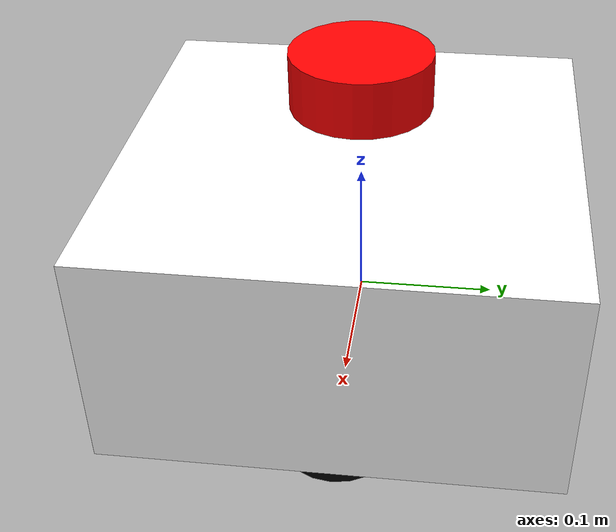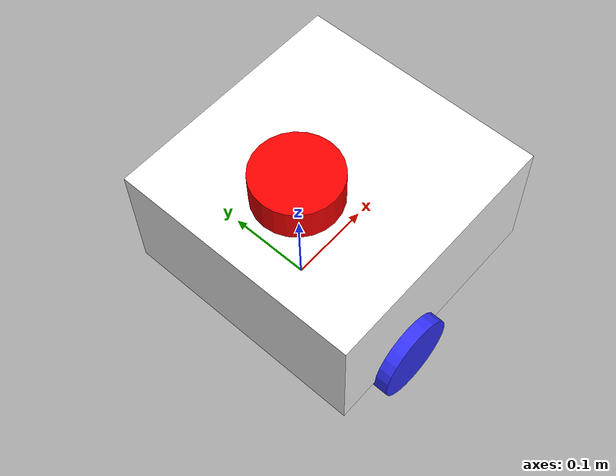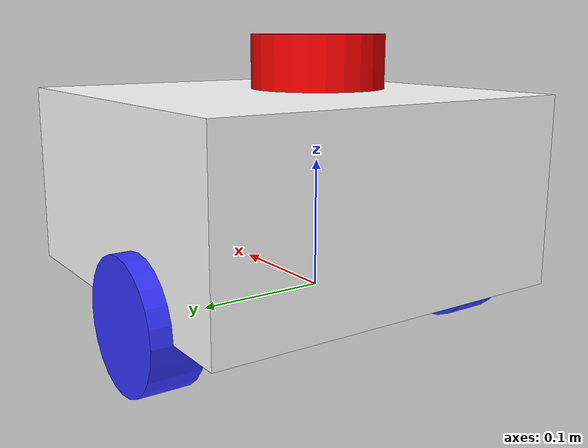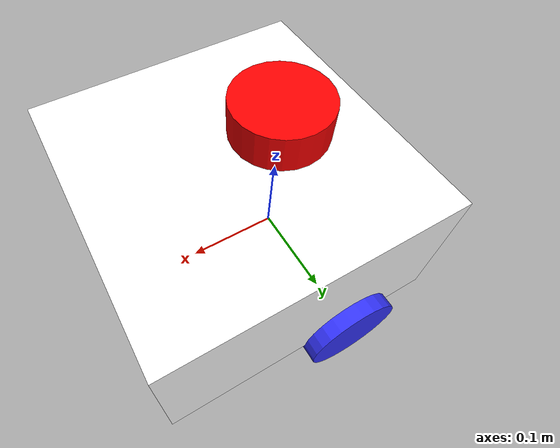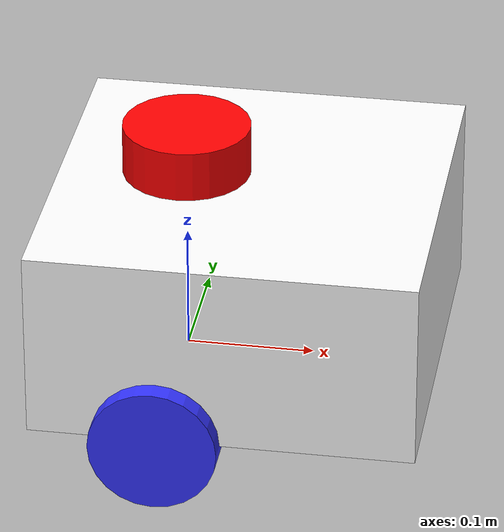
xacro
<?xml version="1.0"?>
<robot xmlns:xacro="http://www.ros.org/wiki/xacro"  name="robot">
    <xacro:arg name='use_ros2_control' default='true'/>
    <xacro:arg name='sim_mode' default='true'/>
    <xacro:include filename="robot_core.xacro" />
    <xacro:if value='$(arg use_ros2_control)'>
        <xacro:include filename="ros2_control.xacro"/>
    </xacro:if>
    <xacro:unless value='$(arg use_ros2_control)'>
        <xacro:include filename="gazebo_control.xacro" />
    </xacro:unless>
    <xacro:include filename="demo.lidar.xacro" />
</robot>

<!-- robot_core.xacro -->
<robot xmlns:xacro="http://www.ros.org/wiki/xacro">

    <xacro:include filename="inertial_macros.xacro" />

    <material name="white">
        <color rgba="1 1 1 1" />
    </material>

    <material name="orange">
        <color rgba="1 0.3 0.1 1" />
    </material>

    <material name="blue">
        <color rgba="0.2 0.2 1 1" />
    </material>

    <material name="black">
        <color rgba="0 0 0 1" />
    </material>

    <material name="red">
        <color rgba="1 0 0 1"/>
    </material>

    <!-- Base Link -->

    <link name="base_link">
        <origin xyz='0 0 0' rpy='0 0 0'/>
    </link>

    <!-- Base Footprint Link -->
     <joint name='base_footprint_joint' type='fixed'>
        <parent link='base_link'/>
        <child link='base_footprint'/>
        <origin xyz='0 0 0' rpy='0 0 0'/>

     </joint>

     <link name='base_footprint'>

     </link>

    <!-- Chassis -->

    <joint name="chassis_joint" type="fixed">
        <parent link="base_link" />
        <child link="chassis" />
        <origin xyz="-0.1 0 0" />
    </joint>

    <link name="chassis">
        <visual>
            <origin xyz="0.15 0 0.075" rpy="0 0 0" />
            <geometry>
                <box size="0.3 0.3 0.15" />
            </geometry>
            <material name="white" />
        </visual>
        <collision>
            <origin xyz="0.15 0 0.075" rpy="0 0 0" />
            <geometry>
                <box size="0.3 0.3 0.15" />
            </geometry>
        </collision>
        <xacro:inertial_box mass="0.5" x="0.3" y="0.3" z="0.15">
            <origin xyz="0.15 0 0.075" rpy="0 0 0" />
        </xacro:inertial_box>
    </link>

    <!-- LEFT WHEEL -->

    <joint name="left_wheel_joint" type="continuous">
        <parent link="base_link" />
        <child link="left_wheel" />
        <origin xyz="0 0.146 0" rpy="-${pi/2} 0 0" />
        <axis xyz="0 0 1" />
        <limit effort="0.05" velocity="10.0" />
    </joint>

    <link name="left_wheel">
        <visual>
            <geometry>
                <cylinder length="0.04" radius="0.05" />
            </geometry>
            <material name="blue" />
        </visual>
        <collision>
            <geometry>
                <sphere radius="0.031" />
            </geometry>
        </collision>
        <xacro:inertial_cylinder mass="0.1" length="0.04" radius="0.031">
            <origin xyz="0 0 0" rpy="0 0 0" />
        </xacro:inertial_cylinder>
    </link>

    <!-- RIGHT WHEEL -->

    <joint name="right_wheel_joint" type="continuous">
        <parent link="base_link" />
        <child link="right_wheel" />
        <origin xyz="0 -0.146 0" rpy="${pi/2} 0 0" />
        <axis xyz="0 0 -1" />
        <limit effort="0.05" velocity="10.0" />
    </joint>

    <link name="right_wheel">
        <visual>
            <geometry>
                <cylinder length="0.04" radius="0.05" />
            </geometry>
            <material name="blue" />
        </visual>
        <collision>
            <geometry>
                <sphere radius="0.031" />
            </geometry>
        </collision>
        <xacro:inertial_cylinder mass="0.1" length="0.04" radius="0.031">
            <origin xyz="0 0 0" rpy="0 0 0" />
        </xacro:inertial_cylinder>
    </link>

    <!-- CASTER WHEEL -->

    <joint name="caster_wheel_joint" type="fixed">
        <parent link="chassis" />
        <child link="caster_wheel" />
        <origin xyz="0.24 0 0" rpy="0 0 0" />
    </joint>

    <link name="caster_wheel">
        <visual>
            <geometry>
                <sphere radius="0.05" />
            </geometry>
            <material name="black" />
        </visual>
        <collision>
            <geometry>
                <sphere radius="0.031" />
            </geometry>
        </collision>
        <xacro:inertial_sphere mass="0.1" radius="0.031">
            <origin xyz="0 0 0" rpy="0 0 0" />
        </xacro:inertial_sphere>
    </link>

    <gazebo reference="caster_wheel">
        <mu1 value="0.0" />
        <mu2 value="0.0" />
    </gazebo>

</robot>

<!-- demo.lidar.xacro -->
<robot xmlns:xacro="http://www.ros.org/wiki/xacro">

    <xacro:include filename="inertial_macros.xacro" />

    <!-- Lidar link -->
    <link name="laser_frame">
        <visual>
            <geometry>
                <cylinder radius="0.05" length="0.04" />
            </geometry>
            <material name="red">
                <color rgba="1 0 0 1" />
            </material>
        </visual>
        <collision>
            <geometry>
                <cylinder radius="0.05" length="0.04" />
            </geometry>
        </collision>
        <xacro:inertial_cylinder mass="0.1" length="0.04" radius="0.05">
            <origin xyz="0.1 0 0.175" rpy="0 0 0" />
        </xacro:inertial_cylinder>
    </link>

    <!-- Joint attaching lidar to chassis -->
    <joint name="laser_joint" type="fixed">
        <parent link="chassis"/>
        <child link="laser_frame"/>
        <origin xyz="0.1 0 0.175" rpy="0 0 0"/>
    </joint>

    <!-- Gazebo Plugin for Lidar -->

    <gazebo>
        <plugin
            filename='gz-sim-sensors-system'
            name='gz::sim::systems::Sensors'>
            <render_engine>ogre2</render_engine>
        </plugin>
    </gazebo>

    <!-- Gazebo lidar sensor -->
    <gazebo reference="laser_frame">
        <sensor name="gpu_lidar" type="gpu_lidar">
            <pose relative_to="laser_frame">0 0 0 0 0 0</pose>

            <lidar>
                <scan>
                    <horizontal>
                        <samples>2000</samples>
                        <min_angle>-3.14</min_angle>
                        <max_angle>3.14</max_angle>
                    </horizontal>
                </scan>
                <range>
                    <min>0.3</min>
                    <max>12</max>
                </range>
                <noise>
                    <type>gaussian</type>
                    <mean>0.0</mean>
                    <stddev>0.001</stddev>
                </noise>
            </lidar>

            <always_on>true</always_on>
            <visualize>true</visualize>
            <topic>scan</topic>
            <update_rate>5</update_rate>
            <frame_id>laser_frame</frame_id>
            <output_type>sensor_msgs/LaserScan</output_type>
            <gz_frame_id>laser_frame</gz_frame_id>
        </sensor>
    </gazebo>

</robot>
